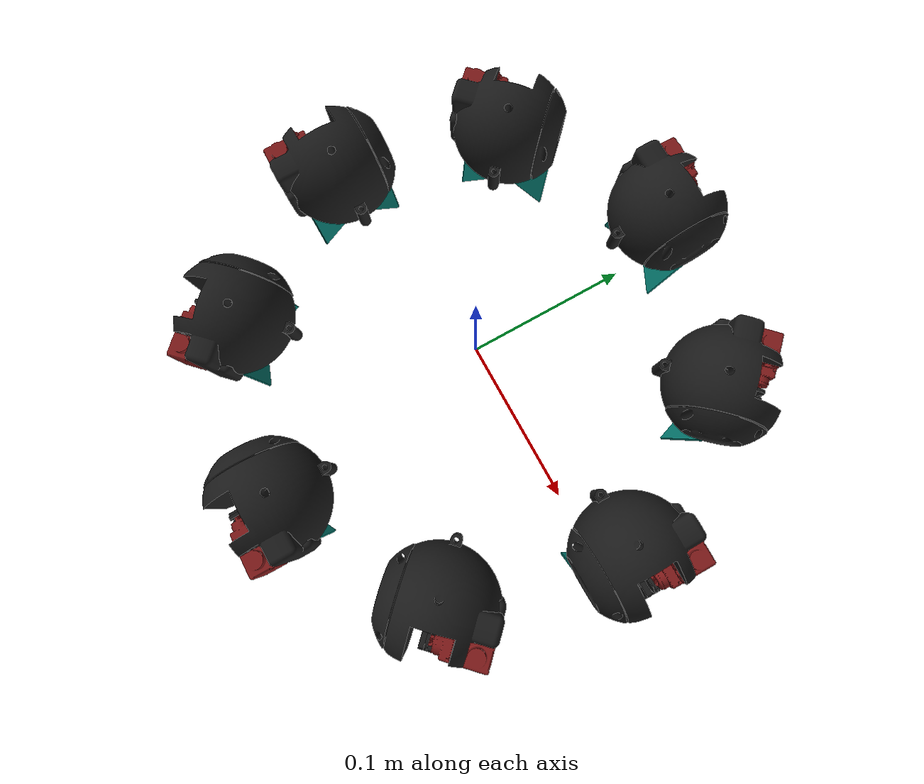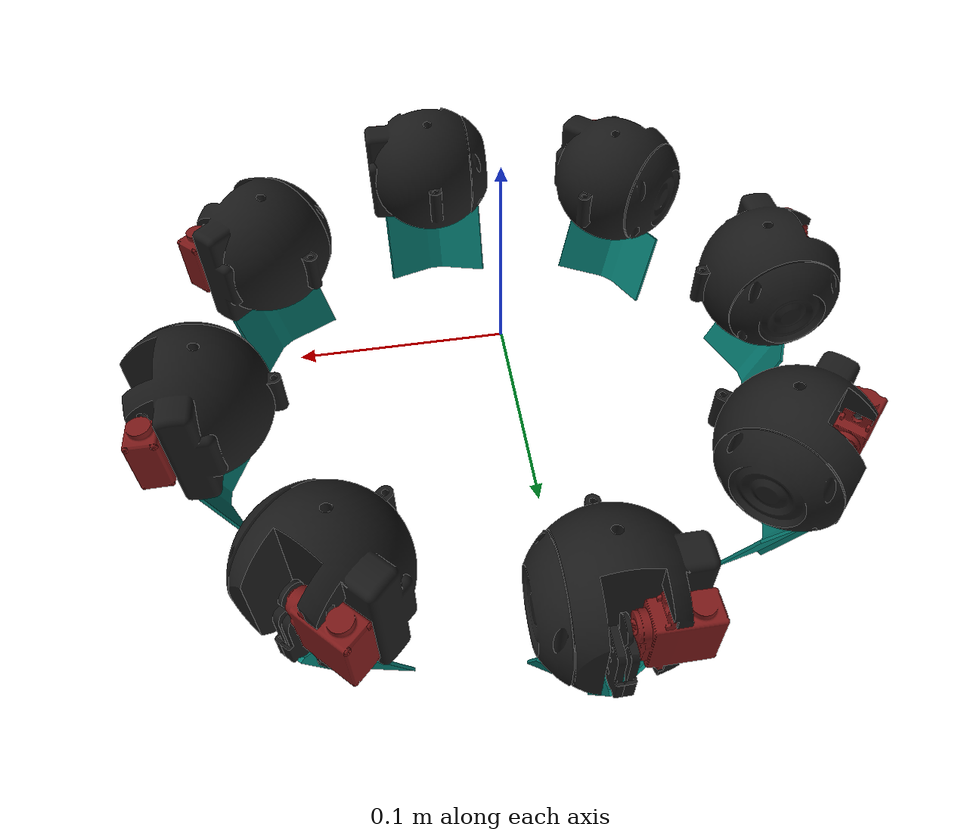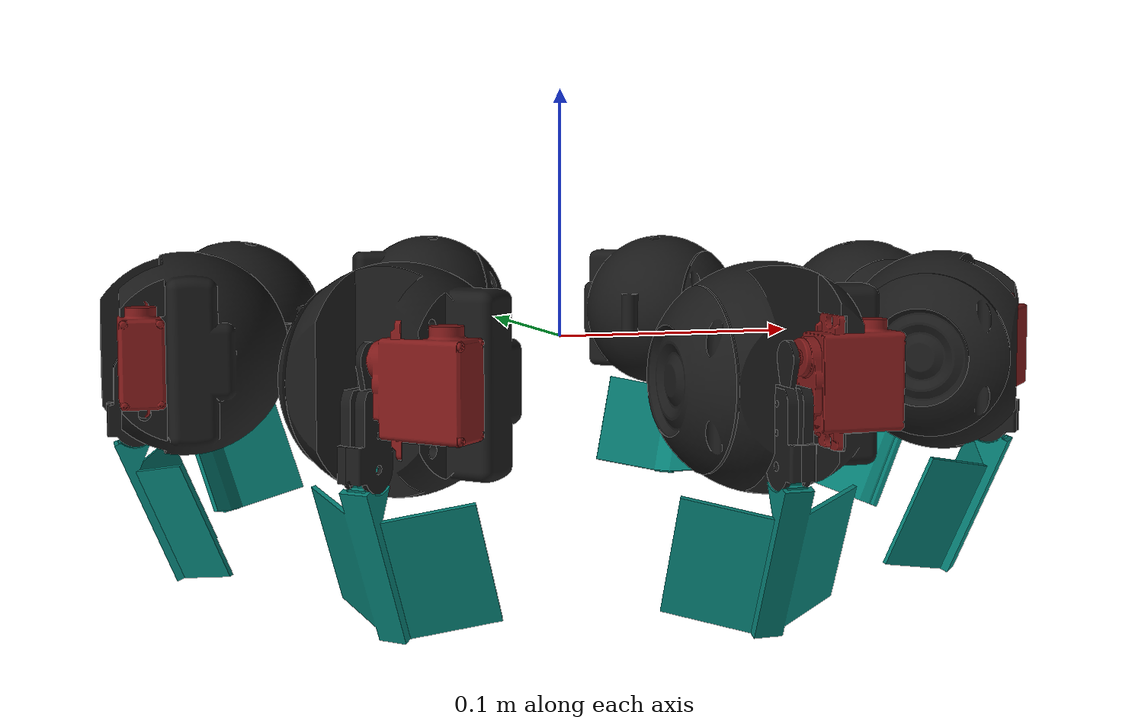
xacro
<?xml version="1.0" encoding="utf-8"?>
<robot name="colony" xmlns:xacro="http://www.ros.org/wiki/xacro">

  <!-- Model xacro file -->
  <xacro:include filename="module.xacro"/>

  <!-- Floating base -->
  <link name="colony_base"/>

  <xacro:module_instance prefix="r1_" parent="colony_base"
                         xyz="0.150000 0.000000 0" rpy="0 -1.5707963 1.5707963267948966"/>
  <xacro:module_instance prefix="r2_" parent="colony_base"
                         xyz="0.106066 0.106066 0" rpy="0 -1.5707963 2.356194490192345"/>
  <xacro:module_instance prefix="r3_" parent="colony_base"
                         xyz="0.000000 0.150000 0" rpy="0 -1.5707963 3.141592653589793"/>
  <xacro:module_instance prefix="r4_" parent="colony_base"
                         xyz="-0.106066 0.106066 0" rpy="0 -1.5707963 -2.356194490192345"/>
  <xacro:module_instance prefix="r5_" parent="colony_base"
                         xyz="-0.150000 0.000000 0" rpy="0 -1.5707963 -1.5707963267948966"/>
  <xacro:module_instance prefix="r6_" parent="colony_base"
                         xyz="-0.106066 -0.106066 0" rpy="0 -1.5707963 -0.7853981633974483"/>
  <xacro:module_instance prefix="r7_" parent="colony_base"
                         xyz="0.000000 -0.150000 0" rpy="0 -1.5707963 0"/>
  <xacro:module_instance prefix="r8_" parent="colony_base"
                         xyz="0.106066 -0.106066 0" rpy="0 -1.5707963 0.7853981633974483"/>
</robot>

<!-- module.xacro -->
<robot xmlns:xacro="http://www.ros.org/wiki/xacro">

  <xacro:macro name="module_instance" params="prefix parent xyz rpy">

    <!-- Attach module root to parent -->
    <joint name="${prefix}mount" type="fixed">
      <origin xyz="${xyz}" rpy="${rpy}"/>
      <parent link="${parent}"/>
      <child link="${prefix}main_body_link"/>
    </joint>

    <!-- Main Body -->
    <link name="${prefix}main_body_link">
      <inertial>
        <origin xyz="0 0.003263 -0.024012" rpy="0 0 0"/>
        <mass value="0.0508654"/>
        <inertia
          ixx="3.2369E-05"
          ixy="-5.1865E-08"
          ixz="6.2298E-08"
          iyy="3.8892E-05"
          iyz="1.5562E-06"
          izz="3.8330E-05"/>
      </inertial>

      <visual>
        <origin xyz="0 0 0" rpy="0 0 0"/>
        <geometry>
          <mesh filename="meshes/main_body.STL"/>
        </geometry>
        <material name="${prefix}grey">
          <color rgba=".1 .1 .1 1"/>
        </material>
      </visual>

      <collision>
        <origin xyz="0 0 0" rpy="0 0 0"/>
        <geometry>
          <mesh filename="meshes/main_body.STL"/>
        </geometry>
      </collision>
    </link>

    <!-- Cap (fixed) -->
    <link name="${prefix}cap_link">
      <inertial>
        <origin xyz="0 0 0.002584" rpy="0 0 0"/>
        <mass value="0.0207453"/>
        <inertia
          ixx="5.2686E-06"
          ixy="2.2073E-12"
          ixz="-4.2054E-12"
          iyy="5.8008E-06"
          iyz="8.3798E-12"
          izz="1.0095E-05"/>
      </inertial>

      <visual>
        <origin xyz="0 0 0" rpy="0 0 0"/>
        <geometry>
          <mesh filename="meshes/cap.STL"/>
        </geometry>
        <material name="${prefix}grey"/>
      </visual>

      <collision>
        <origin xyz="0 0 0" rpy="0 0 0"/>
        <geometry>
          <mesh filename="meshes/cap.STL"/>
        </geometry>
      </collision>
    </link>

    <!-- Motor (fixed) -->
    <link name="${prefix}motor_link">
      <inertial>
        <origin xyz="0.000583 0.013451 0" rpy="0 0 0"/>
        <mass value="0.0180991"/>
        <inertia
          ixx="1.7385E-06"
          ixy="-6.0293E-09"
          ixz="-2.8041E-10"
          iyy="1.8742E-06"
          iyz="-3.9561E-11"
          izz="2.9658E-06"/>
      </inertial>

      <visual>
        <origin xyz="0 0 0" rpy="0 0 0"/>
        <geometry>
          <mesh filename="meshes/motor.STL"/>
        </geometry>
        <material name="${prefix}red">
          <color rgba=".5 .1 .1 1"/>
        </material>
      </visual>

      <collision>
        <origin xyz="0 0 0" rpy="0 0 0"/>
        <geometry>
          <mesh filename="meshes/motor.STL"/>
        </geometry>
      </collision>
    </link>

    <joint name="${prefix}main_body_to_cap" type="fixed">
      <origin xyz="0 0 0.001" rpy="0 0 0"/>
      <parent link="${prefix}main_body_link"/>
      <child link="${prefix}cap_link"/>
    </joint>

    <joint name="${prefix}main_body_to_motor" type="fixed">
      <origin xyz="0 -0.017 -0.055" rpy="1.57079632679 0 0"/>
      <parent link="${prefix}main_body_link"/>
      <child link="${prefix}motor_link"/>
    </joint>

    <!-- Motor paddle (revolute hinge) -->
    <link name="${prefix}motor_paddle_link">
      <inertial>
        <origin xyz="-0.00442 -0.000212 0" rpy="0 0 0"/>
        <mass value="0.000425108"/>
        <inertia
          ixx="2.9604E-09"
          ixy="1.1351E-10"
          ixz="-4.1107E-26"
          iyy="1.4476E-08"
          iyz="5.9011E-26"
          izz="1.7153E-08"/>
      </inertial>

      <visual>
        <origin xyz="0 0 0" rpy="0 0 0"/>
        <geometry>
          <mesh filename="meshes/motor_paddle.STL"/>
        </geometry>
        <material name="${prefix}grey"/>
      </visual>

      <collision>
        <origin xyz="0 0 0" rpy="0 0 0"/>
        <geometry>
          <mesh filename="meshes/motor_paddle.STL"/>
        </geometry>
      </collision>
    </link>

    <joint name="${prefix}motor_hinge" type="revolute">
      <origin xyz="0.008 0.035 0" rpy="1.57079632679 0 0"/>
      <axis xyz="0 0 1"/>
      <limit lower="-0.7854" upper="0.7854" effort="1.0" velocity="10.0"/>
      <parent link="${prefix}motor_link"/>
      <child link="${prefix}motor_paddle_link"/>
      <dynamics damping="1e-1"/>
    </joint>

    <!-- flA, flB (fixed) -->
    <link name="${prefix}flA_link">
      <inertial>
        <origin xyz="0.001618 0.001988 -0.000278" rpy="0 0 0"/>
        <mass value="0.0175588"/>
        <inertia
          ixx="4.1751E-08"
          ixy="1.0291E-08"
          ixz="2.1462E-09"
          iyy="1.2538E-07"
          iyz="1.0233E-09"
          izz="1.6320E-07"/>
      </inertial>

      <visual>
        <origin xyz="0 0 0" rpy="0 0 0"/>
        <geometry>
          <mesh filename="meshes/flA.STL"/>
        </geometry>
        <material name="${prefix}grey"/>
      </visual>

      <collision>
        <origin xyz="0 0 0" rpy="0 0 0"/>
        <geometry>
          <mesh filename="meshes/flA.STL"/>
        </geometry>
      </collision>
    </link>

    <link name="${prefix}flB_link">
      <inertial>
        <origin xyz="0.001618 0.001988 0.000278" rpy="0 0 0"/>
        <mass value="0.017588"/>
        <inertia
          ixx="4.1751E-08"
          ixy="1.0291E-08"
          ixz="-2.1462E-09"
          iyy="1.2538E-07"
          iyz="-1.0233E-09"
          izz="1.6320E-07"/>
      </inertial>

      <visual>
        <origin xyz="0 0 0" rpy="0 0 0"/>
        <geometry>
          <mesh filename="meshes/flB.STL"/>
        </geometry>
        <material name="${prefix}grey"/>
      </visual>

      <collision>
        <origin xyz="0 0 0" rpy="0 0 0"/>
        <geometry>
          <mesh filename="meshes/flB.STL"/>
        </geometry>
      </collision>
    </link>

    <joint name="${prefix}motor_paddle_to_flA" type="fixed">
      <origin xyz="-0.025 0 0.003" rpy="0 0 0"/>
      <parent link="${prefix}motor_paddle_link"/>
      <child link="${prefix}flA_link"/>
    </joint>

    <joint name="${prefix}motor_paddle_to_flB" type="fixed">
      <origin xyz="-0.025 0 -0.003" rpy="0 0 0"/>
      <parent link="${prefix}motor_paddle_link"/>
      <child link="${prefix}flB_link"/>
    </joint>

    <!-- Paddle (revolute hinge) -->
    <link name="${prefix}paddle_link">
      <inertial>
        <origin xyz="0.001281 0.029867 0" rpy="0 0 0"/>
        <mass value="0.00849369"/>
        <inertia
          ixx="4.2957E-06"
          ixy="3.0329E-08"
          ixz="1.9701E-22"
          iyy="1.9992E-06"
          iyz="-3.8433E-22"
          izz="2.7663E-06"/>
      </inertial>

      <visual>
        <origin xyz="0 0 0" rpy="0 0 0"/>
        <geometry>
          <mesh filename="meshes/paddle.STL"/>
        </geometry>
        <material name="${prefix}mint">
          <color rgba="0.02 0.5 0.46 1"/>
        </material>
      </visual>

      <collision>
        <origin xyz="0 0 0" rpy="0 0 0"/>
        <geometry>
          <mesh filename="meshes/paddle.STL"/>
        </geometry>
      </collision>
    </link>

    <joint name="${prefix}paddle_hinge" type="revolute">
      <origin xyz="-0.0335 0.0015 0" rpy="0 0 1.96349539694"/>
      <axis xyz="0 0 1"/>
      <limit lower="-0.3927" upper="0.3927" effort="1.0" velocity="10.0"/>
      <parent link="${prefix}motor_paddle_link"/>
      <child link="${prefix}paddle_link"/>
      <dynamics damping="1e-1"/>
    </joint>

  </xacro:macro>
</robot>
